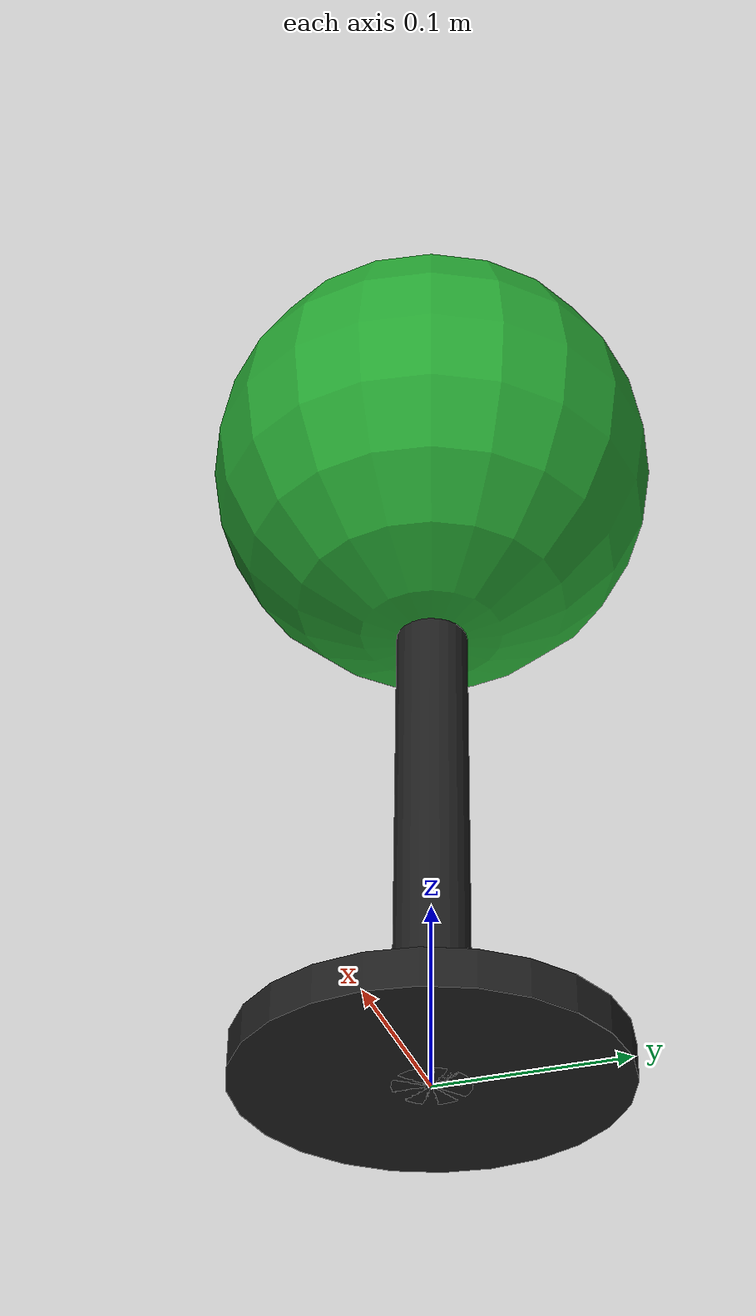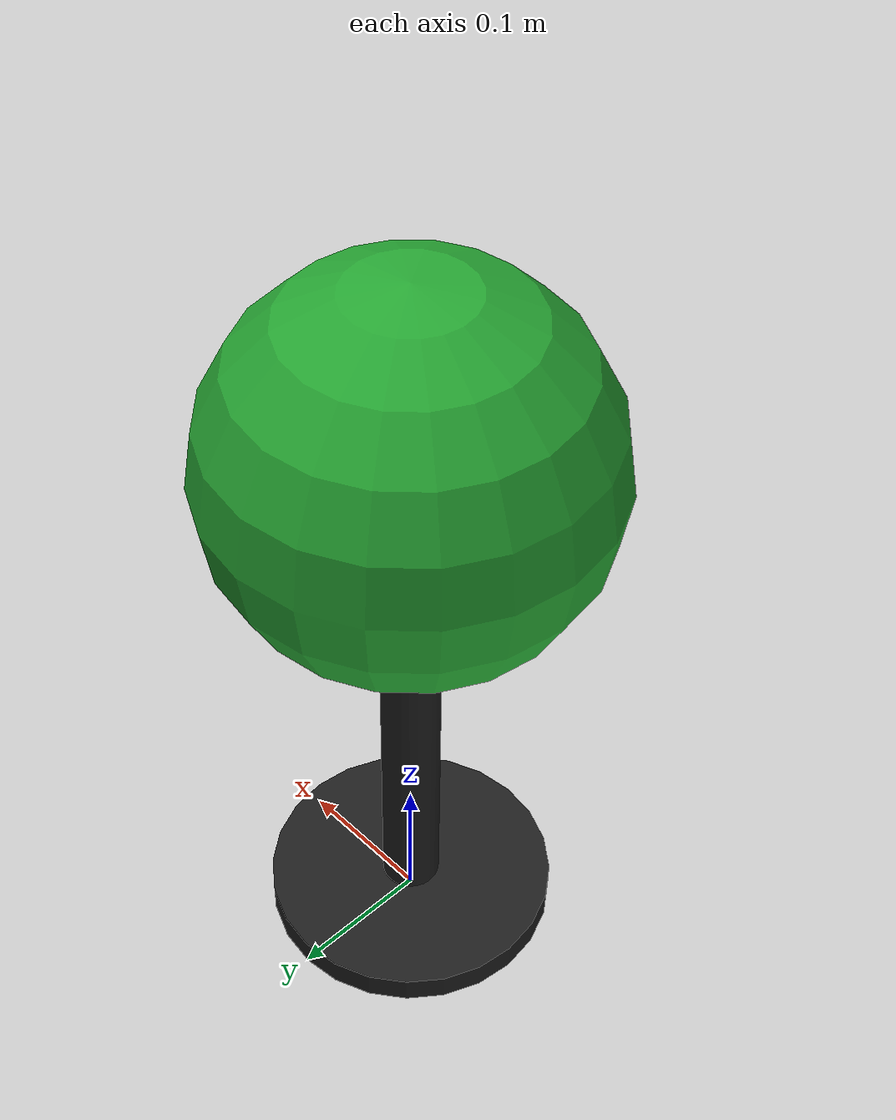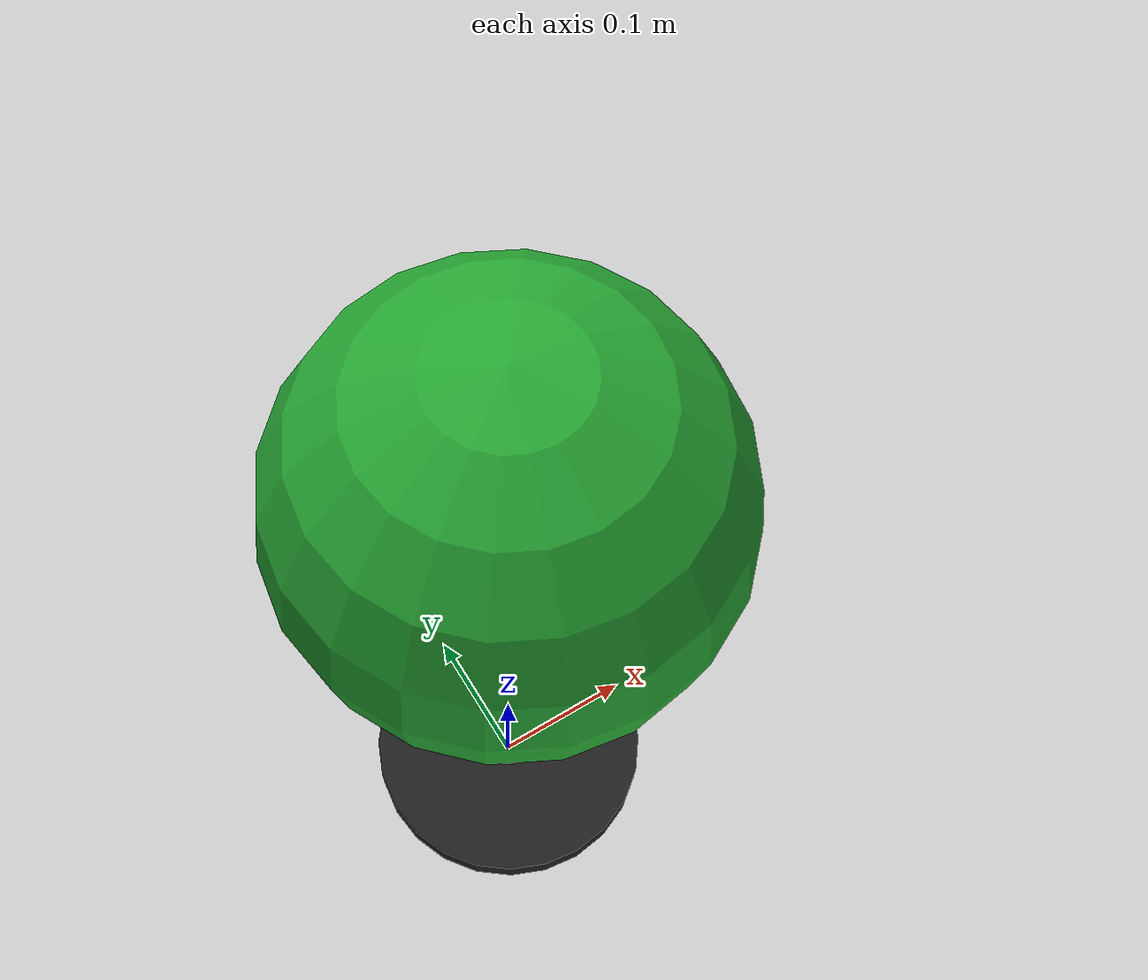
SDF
<?xml version="1.0" ?>

<sdf version="1.5">
  <model name="short_green_buoy">
    <static>false</static>
    <link name="link">

      <collision name="flare">
        <pose>0 0 0.375 0 0 0</pose>
        <geometry>
          <cylinder>
            <radius>0.125</radius>
            <length>0.75</length>
          </cylinder>
        </geometry>
      </collision>

      <visual name="flare">
        <cast_shadows>false</cast_shadows>
        <pose>0 0 0.2 0 0 0</pose>
        <geometry>
          <cylinder>
            <radius>0.02</radius>
            <length>0.4</length>
          </cylinder>
        </geometry>
        <material>
          <script>
            <uri>file://materials/scripts/colors.material</uri>
            <name>SAUVC/Black</name>
          </script>
        </material>
      </visual>

      <visual name="ball">
        <cast_shadows>false</cast_shadows>
        <pose>0 0 0.4 0 0 0</pose>
        <geometry>
          <sphere>
            <radius>0.13</radius>
          </sphere>
        </geometry>
        <material>
          <script>
            <uri>file://materials/scripts/colors.material</uri>
            <name>SAUVC/Green</name>
          </script>
        </material>
      </visual>

      <visual name="stand">
        <cast_shadows>false</cast_shadows>
        <pose>0 0 0.01 0 0 0</pose>
        <geometry>
          <cylinder>
            <radius>0.1</radius>
            <length>0.02</length>
          </cylinder>
        </geometry>
        <material>
          <script>
            <uri>file://materials/scripts/colors.material</uri>
            <name>SAUVC/Black</name>
          </script>
        </material>
      </visual>

    </link>
  </model>
</sdf>
